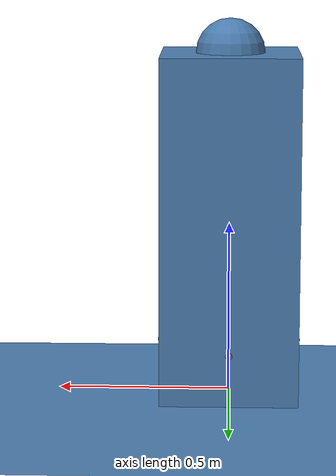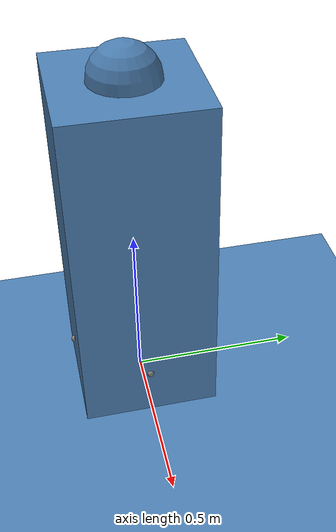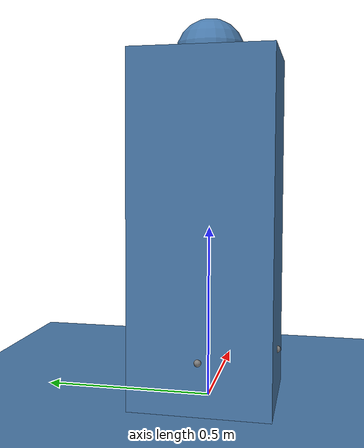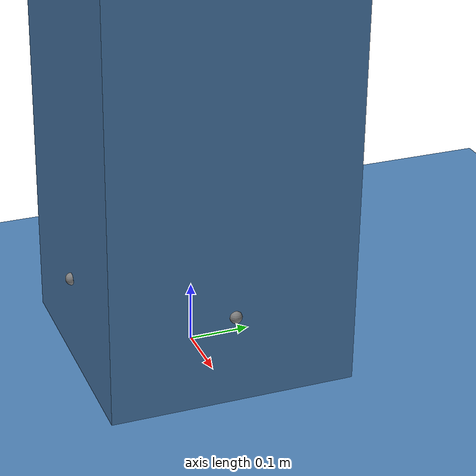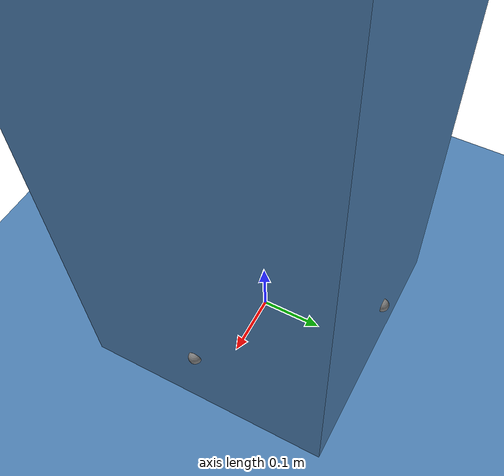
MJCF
<mujoco model="hover_obstacle">
  <compiler angle="radian" meshdir="." autolimits="true"/>

  <option timestep="0.002" iterations="1" ls_iterations="4">
    <flag eulerdamp="disable"/>
  </option>

  <default>
    <joint armature="0.001" damping="0.01" limited="true"/>
    <geom contype="0" conaffinity="0" friction="0.3 0.005 0.0001" rgba="0.3 0.5 0.7 1"/>
  </default>

  <asset>
    <texture type="skybox" builtin="gradient" rgb1="0.6 0.8 1.0" rgb2="0.2 0.4 0.8" width="512" height="512"/>
    <texture name="grid" type="2d" builtin="checker" rgb1="0.9 0.9 0.9" rgb2="0.7 0.7 0.7" width="512" height="512"/>
    <material name="grid_mat" texture="grid" texrepeat="20 20" reflectance="0.1"/>
    <material name="obstacle_mat" rgba="0.8 0.2 0.2 0.8"/>
    <material name="goal_mat" rgba="0.2 0.8 0.2 0.5"/>
  </asset>

  <worldbody>
    <light directional="true" diffuse="0.8 0.8 0.8" specular="0.3 0.3 0.3" pos="0 0 5" dir="0 0 -1"/>
    <geom name="floor" type="plane" size="50 50 0.1" material="grid_mat"/>

    <!-- Static obstacle: a box -->
    <body name="obstacle_box" pos="0.0 0.0 0.5">
      <geom name="obstacle_geom" type="box" size="0.2 0.2 0.5" material="obstacle_mat"/>
    </body>

    <!-- Goal marker (visual only) -->
    <body name="goal" pos="0.0 0.0 1.0">
      <geom name="goal_geom" type="sphere" size="0.1" material="goal_mat" contype="0" conaffinity="0"/>
    </body>

    <!-- Quadrotor -->
    <body name="quadrotor" pos="0.0 0.0 0.15">
      <freejoint name="root"/>
      <geom name="body_geom" type="box" size="0.1 0.05 0.02" mass="0.75"/>

      <!-- Arm 1 -->
      <body name="arm1" pos="0.1 0.0 0.0">
        <geom name="arm1_geom" type="cylinder" size="0.01 0.1" euler="0 1.5708 0" mass="0.05"/>
        <site name="motor1" pos="0.1 0.0 0.0" size="0.01"/>
      </body>
      <!-- Arm 2 -->
      <body name="arm2" pos="-0.1 0.0 0.0">
        <geom name="arm2_geom" type="cylinder" size="0.01 0.1" euler="0 1.5708 0" mass="0.05"/>
        <site name="motor2" pos="-0.1 0.0 0.0" size="0.01"/>
      </body>
      <!-- Arm 3 -->
      <body name="arm3" pos="0.0 0.1 0.0">
        <geom name="arm3_geom" type="cylinder" size="0.01 0.1" euler="1.5708 0 0" mass="0.05"/>
        <site name="motor3" pos="0.0 0.1 0.0" size="0.01"/>
      </body>
      <!-- Arm 4 -->
      <body name="arm4" pos="0.0 -0.1 0.0">
        <geom name="arm4_geom" type="cylinder" size="0.01 0.1" euler="1.5708 0 0" mass="0.05"/>
        <site name="motor4" pos="0.0 -0.1 0.0" size="0.01"/>
      </body>

      <!-- Rangefinder -->
      <site name="rangefinder" pos="0.0 0.0 0.0" zaxis="0 0 -1"/>
    </body>
  </worldbody>

  <actuator>
    <motor name="motor1" site="motor1" gear="0 0 1 0.1 0 0" ctrllimited="true" ctrlrange="0 3"/>
    <motor name="motor2" site="motor2" gear="0 0 1 -0.1 0 0" ctrllimited="true" ctrlrange="0 3"/>
    <motor name="motor3" site="motor3" gear="0 0 1 0 0.1 0" ctrllimited="true" ctrlrange="0 3"/>
    <motor name="motor4" site="motor4" gear="0 0 1 0 -0.1 0" ctrllimited="true" ctrlrange="0 3"/>
  </actuator>

  <sensor>
    <rangefinder name="rangefinder" site="rangefinder"/>
  </sensor>
</mujoco>
